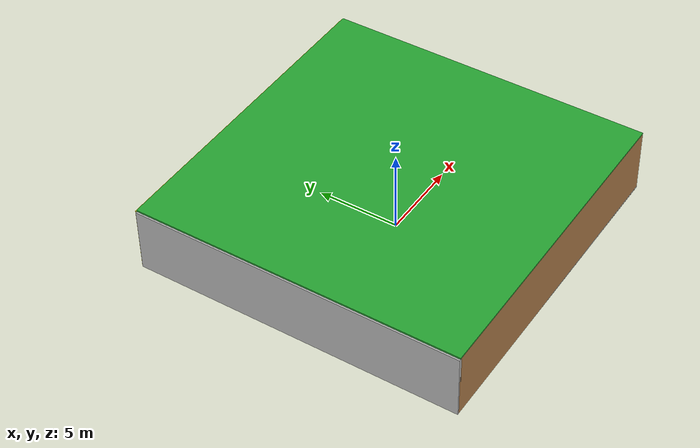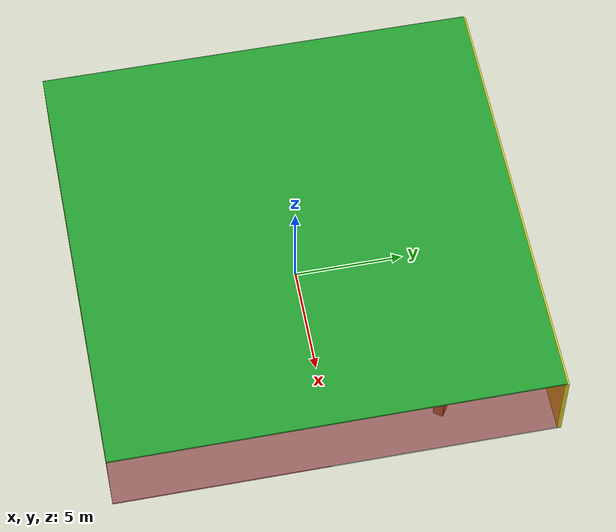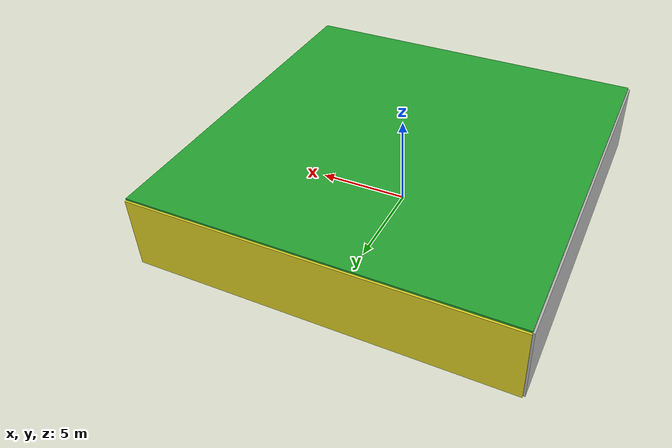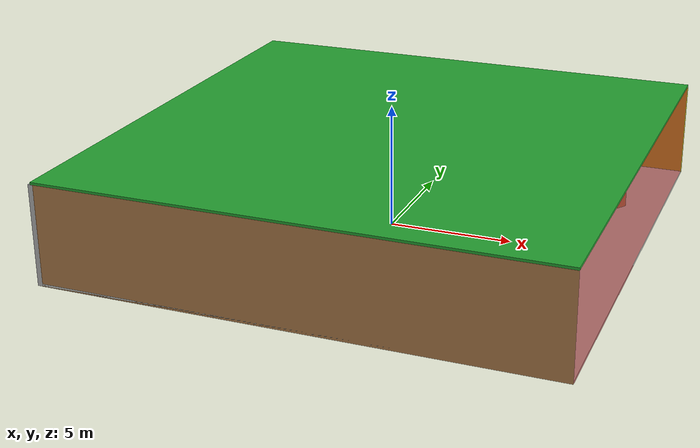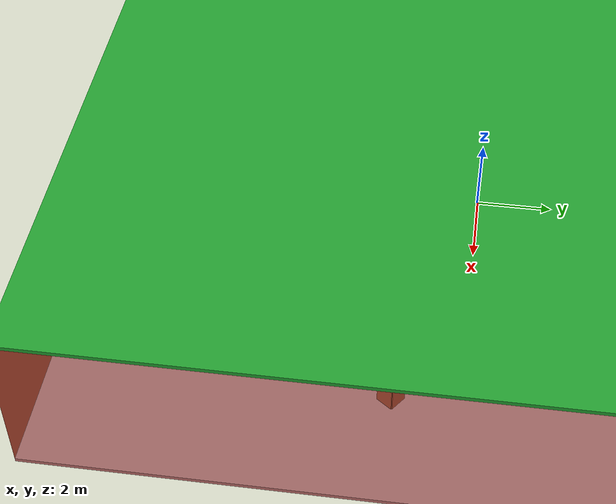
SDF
<sdf version="1.4">
 <world name="default">
  <physics type="ode">
   <max_step_size>0.001</max_step_size>
   <real_time_factor>1</real_time_factor>
   <real_time_update_rate>1000</real_time_update_rate>
   <gravity>0 0 -9.8</gravity>
  </physics>
  <scene><ambient>0.4 0.4 0.4 1</ambient><background>0.7 0.7 0.7 1</background><shadows>1</shadows></scene>
  <model name="Surrounding">
   <static>1</static>
   <link name="Ceiling">
    <collision name="Ceiling_Collision"><geometry><box><size>20 20 0.1</size></box></geometry></collision>
    <visual name="Ceiling_Visual">
     <geometry><box><size>20 20 0.1</size></box></geometry>
     <material>
      <script><uri>file://media/materials/scripts/gazebo.material</uri><name>Gazebo/GreenGlow</name></script>
     </material>
    </visual>
    <pose>0 0 4.05 0 0 0</pose>
   </link>
   <link name="Wall_South">
    <collision name="Wall_South_Collision">
     <geometry><box><size>20 0 4</size></box></geometry>
     <pose>0 0 2 0 -0 0</pose>
    </collision>
    <visual name="Wall_South_Visual">
     <pose>0 0 2 0 -0 0</pose>
     <geometry><box><size>20 0 4</size></box></geometry>
     <material>
      <script><uri>file://media/materials/scripts/gazebo.material</uri><name>Gazebo/WoodFloor</name></script>
     </material>
    </visual>
    <velocity_decay><linear>0</linear><angular>0</angular></velocity_decay>
    <pose>0 -10 0 0 -0 0</pose>
   </link>
   <link name="Wall_East">
    <collision name="Wall_21_Collision">
     <geometry><box><size>20 0 4</size></box></geometry>
     <pose>0 0 2 0 -0 0</pose>
    </collision>
    <visual name="Wall_21_Visual">
     <pose>0 0 2 0 -0 0</pose>
     <geometry><box><size>20 0 4</size></box></geometry>
     <material>
      <script><uri>file://media/materials/scripts/gazebo.material</uri><name>Gazebo/RedTransparent</name></script>
     </material>
    </visual>
    <velocity_decay><linear>0</linear><angular>0</angular></velocity_decay>
    <pose>10 0 0 0 -0 1.5708</pose>
   </link>
   <link name="Wall_North">
    <collision name="Wall_22_Collision">
     <geometry><box><size>20 0.2 4</size></box></geometry>
     <pose>0 0 2 0 -0 0</pose>
    </collision>
    <visual name="Wall_22_Visual">
     <pose>0 0 2 0 -0 0</pose>
     <geometry><box><size>20 0.2 4</size></box></geometry>
     <material>
      <script><uri>file://media/materials/scripts/gazebo.material</uri><name>Gazebo/Yellow</name></script>
     </material>
    </visual>
    <velocity_decay><linear>0</linear><angular>0</angular></velocity_decay>
    <pose>0 10 0 0 -0 0</pose>
   </link>
   <link name="Wall_West">
    <collision name="Wall_23_Collision">
     <geometry><box><size>20 0.2 4</size></box></geometry>
     <pose>0 0 2 0 -0 0</pose>
    </collision>
    <visual name="Wall_23_Visual">
     <pose>0 0 2 0 -0 0</pose>
     <geometry><box><size>20 0.2 4</size></box></geometry>
     <material>
      <script><uri>file://media/materials/scripts/gazebo.material</uri><name>Gazebo/JointAnchor</name></script>
     </material>
    </visual>
    <velocity_decay><linear>0</linear><angular>0</angular></velocity_decay>
    <pose>-10 0 0 0 0 -1.5708</pose>
   </link>
   <link name="Ground_link">
    <collision name="collision">
     <pose>0 0 .05 0 -0 0</pose>
     <geometry><box><size>20 20 0.1</size></box></geometry>
    </collision>
    <visual name="visual">
     <pose>0 0 .05 0 -0 0</pose>
     <geometry><box><size>20 20 0.1</size></box></geometry>
     <material>
      <script><uri>file://media/materials/scripts/gazebo.material</uri><name>Gazebo/CeilingTiled</name></script>
     </material>
    </visual>
   </link>
   <static>1</static>
  </model>
  <spherical_coordinates>
   <surface_model>EARTH_WGS84</surface_model>
   <latitude_deg>0</latitude_deg>
   <longitude_deg>0</longitude_deg>
   <elevation>0</elevation>
   <heading_deg>0</heading_deg>
  </spherical_coordinates>
  <light name="lightball_0" type="diffuse">
   <diffuse>0.8 0.8 0.8 1</diffuse>
   <specular>0.2 0.2 0.2 1</specular>
   <attenuation>
    <range>100</range>
    <constant>0.7</constant>
    <linear>0.01</linear>
    <quadratic>0.001</quadratic>
   </attenuation>
   <direction>-0.5 0.1 -0.9</direction>
   <pose>-7.51606848197 7.95671094451 2.43392771439 0 0 0</pose>
  </light>
  <light name="lightball_1" type="diffuse">
   <diffuse>0.8 0.8 0.8 1</diffuse>
   <specular>0.2 0.2 0.2 1</specular>
   <attenuation>
    <range>100</range>
    <constant>0.7</constant>
    <linear>0.01</linear>
    <quadratic>0.001</quadratic>
   </attenuation>
   <direction>-0.5 0.1 -0.9</direction>
   <pose>1.91692833139 -2.9568377453 3.27175246009 0 0 0</pose>
  </light>
  <light name="lightball_2" type="diffuse">
   <diffuse>0.8 0.8 0.8 1</diffuse>
   <specular>0.2 0.2 0.2 1</specular>
   <attenuation>
    <range>100</range>
    <constant>0.7</constant>
    <linear>0.01</linear>
    <quadratic>0.001</quadratic>
   </attenuation>
   <direction>-0.5 0.1 -0.9</direction>
   <pose>-3.25670688193 0.912060205631 1.31991351336 0 0 0</pose>
  </light>
  <light name="lightball_3" type="diffuse">
   <diffuse>0.8 0.8 0.8 1</diffuse>
   <specular>0.2 0.2 0.2 1</specular>
   <attenuation>
    <range>100</range>
    <constant>0.7</constant>
    <linear>0.01</linear>
    <quadratic>0.001</quadratic>
   </attenuation>
   <direction>-0.5 0.1 -0.9</direction>
   <pose>-8.27542868978 -1.38222193821 0.720511867413 0 0 0</pose>
  </light>
  <light name="lightball_4" type="diffuse">
   <diffuse>0.8 0.8 0.8 1</diffuse>
   <specular>0.2 0.2 0.2 1</specular>
   <attenuation>
    <range>100</range>
    <constant>0.7</constant>
    <linear>0.01</linear>
    <quadratic>0.001</quadratic>
   </attenuation>
   <direction>-0.5 0.1 -0.9</direction>
   <pose>-7.73443918137 9.80564790709 2.32016897667 0 0 0</pose>
  </light>
  <light name="lightball_5" type="diffuse">
   <diffuse>0.8 0.8 0.8 1</diffuse>
   <specular>0.2 0.2 0.2 1</specular>
   <attenuation>
    <range>100</range>
    <constant>0.7</constant>
    <linear>0.01</linear>
    <quadratic>0.001</quadratic>
   </attenuation>
   <direction>-0.5 0.1 -0.9</direction>
   <pose>9.46305382824 3.81809016149 3.42536711349 0 0 0</pose>
  </light>
  <light name="lightball_6" type="diffuse">
   <diffuse>0.8 0.8 0.8 1</diffuse>
   <specular>0.2 0.2 0.2 1</specular>
   <attenuation>
    <range>100</range>
    <constant>0.7</constant>
    <linear>0.01</linear>
    <quadratic>0.001</quadratic>
   </attenuation>
   <direction>-0.5 0.1 -0.9</direction>
   <pose>1.0979379105 -8.49733848429 1.46080528413 0 0 0</pose>
  </light>
  <light name="lightball_7" type="diffuse">
   <diffuse>0.8 0.8 0.8 1</diffuse>
   <specular>0.2 0.2 0.2 1</specular>
   <attenuation>
    <range>100</range>
    <constant>0.7</constant>
    <linear>0.01</linear>
    <quadratic>0.001</quadratic>
   </attenuation>
   <direction>-0.5 0.1 -0.9</direction>
   <pose>-3.77029338921 -2.31154895691 0.585548562937 0 0 0</pose>
  </light>
  <light name="lightball_8" type="diffuse">
   <diffuse>0.8 0.8 0.8 1</diffuse>
   <specular>0.2 0.2 0.2 1</specular>
   <attenuation>
    <range>100</range>
    <constant>0.7</constant>
    <linear>0.01</linear>
    <quadratic>0.001</quadratic>
   </attenuation>
   <direction>-0.5 0.1 -0.9</direction>
   <pose>2.22485262942 3.71357257433 2.96073503338 0 0 0</pose>
  </light>
  <light name="lightball_9" type="diffuse">
   <diffuse>0.8 0.8 0.8 1</diffuse>
   <specular>0.2 0.2 0.2 1</specular>
   <attenuation>
    <range>100</range>
    <constant>0.7</constant>
    <linear>0.01</linear>
    <quadratic>0.001</quadratic>
   </attenuation>
   <direction>-0.5 0.1 -0.9</direction>
   <pose>5.12527687672 -8.11412234861 1.23427408439 0 0 0</pose>
  </light>
  <light name="lightball_10" type="diffuse">
   <diffuse>0.8 0.8 0.8 1</diffuse>
   <specular>0.2 0.2 0.2 1</specular>
   <attenuation>
    <range>100</range>
    <constant>0.7</constant>
    <linear>0.01</linear>
    <quadratic>0.001</quadratic>
   </attenuation>
   <direction>-0.5 0.1 -0.9</direction>
   <pose>-3.93799082516 0.329408823912 1.18936614663 0 0 0</pose>
  </light>
  <light name="lightball_11" type="diffuse">
   <diffuse>0.8 0.8 0.8 1</diffuse>
   <specular>0.2 0.2 0.2 1</specular>
   <attenuation>
    <range>100</range>
    <constant>0.7</constant>
    <linear>0.01</linear>
    <quadratic>0.001</quadratic>
   </attenuation>
   <direction>-0.5 0.1 -0.9</direction>
   <pose>5.43184230192 -3.83015893135 1.67776054694 0 0 0</pose>
  </light>
  <light name="lightball_12" type="diffuse">
   <diffuse>0.8 0.8 0.8 1</diffuse>
   <specular>0.2 0.2 0.2 1</specular>
   <attenuation>
    <range>100</range>
    <constant>0.7</constant>
    <linear>0.01</linear>
    <quadratic>0.001</quadratic>
   </attenuation>
   <direction>-0.5 0.1 -0.9</direction>
   <pose>2.90720776506 0.599816912424 2.83799930157 0 0 0</pose>
  </light>
  <include><uri>model://table</uri><pose>-8.29482405034 4.50930019935 0 0 0 0.0415900509581</pose></include>
  <include>
   <uri>model://textured_shapes</uri>
   <pose>0.958461653825 -4.82502248083 0 0 0 2.83189517244</pose>
  </include>
  <include><uri>model://table</uri><pose>2.17486910792 8.13035475392 0 0 0 1.68163041268</pose></include>
  <include>
   <uri>model://robocup_3Dsim_goal</uri>
   <pose>3.84652705954 -4.28864312381 0 0 0 1.16768883752</pose>
  </include>
  <include><uri>model://cabinet</uri><pose>7.10868621864 -1.65858274099 0 0 0 0.938466734429</pose></include>
  <include><uri>model://cabinet</uri><pose>8.20167850266 4.98448854142 0 0 0 0.950168475938</pose></include>
  <include>
   <uri>model://robocup_3Dsim_goal</uri>
   <pose>6.9945413954 7.22876942618 0 0 0 1.86114701303</pose>
  </include>
 </world>
</sdf>

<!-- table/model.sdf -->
<sdf version="1.5">
  <model name="table">
    <static>true</static>
    <link name="link">
      <collision name="surface">
        <pose>0 0 1.0 0 0 0</pose>
        <geometry>
          <box>
            <size>1.5 0.8 0.03</size>
          </box>
        </geometry>
        <surface>
          <friction>
            <ode>
              <mu>0.6</mu>
              <mu2>0.6</mu2>
            </ode>
          </friction>
        </surface>
      </collision>
      <visual name="visual1">
        <pose>0 0 1.0 0 0 0</pose>
        <geometry>
          <box>
            <size>1.5 0.8 0.03</size>
          </box>
        </geometry>
        <material>
          <script>
            <uri>model://media/materials/scripts/gazebo.material</uri>
            <name>Gazebo/Wood</name>
          </script>
        </material>
      </visual>
      <collision name="front_left_leg">
        <pose>0.68 0.38 0.5 0 0 0</pose>
        <geometry>
          <cylinder>
            <radius>0.02</radius>
            <length>1.0</length>
          </cylinder>
        </geometry>
      </collision>
      <visual name="front_left_leg">
        <pose>0.68 0.38 0.5 0 0 0</pose>
        <geometry>
          <cylinder>
            <radius>0.02</radius>
            <length>1.0</length>
          </cylinder>
        </geometry>
        <material>
          <script>
            <uri>model://media/materials/scripts/gazebo.material</uri>
            <name>Gazebo/Grey</name>
          </script>
        </material>
      </visual>
      <collision name="front_right_leg">
        <pose>0.68 -0.38 0.5 0 0 0</pose>
        <geometry>
          <cylinder>
            <radius>0.02</radius>
            <length>1.0</length>
          </cylinder>
        </geometry>
      </collision>
      <visual name="front_right_leg">
        <pose>0.68 -0.38 0.5 0 0 0</pose>
        <geometry>
          <cylinder>
            <radius>0.02</radius>
            <length>1.0</length>
          </cylinder>
        </geometry>
        <material>
          <script>
            <uri>model://media/materials/scripts/gazebo.material</uri>
            <name>Gazebo/Grey</name>
          </script>
        </material>
      </visual>
      <collision name="back_right_leg">
        <pose>-0.68 -0.38 0.5 0 0 0</pose>
        <geometry>
          <cylinder>
            <radius>0.02</radius>
            <length>1.0</length>
          </cylinder>
        </geometry>
      </collision>
      <visual name="back_right_leg">
        <pose>-0.68 -0.38 0.5 0 0 0</pose>
        <geometry>
          <cylinder>
            <radius>0.02</radius>
            <length>1.0</length>
          </cylinder>
        </geometry>
        <material>
          <script>
            <uri>model://media/materials/scripts/gazebo.material</uri>
            <name>Gazebo/Grey</name>
          </script>
        </material>
      </visual>
      <collision name="back_left_leg">
        <pose>-0.68 0.38 0.5 0 0 0</pose>
        <geometry>
          <cylinder>
            <radius>0.02</radius>
            <length>1.0</length>
          </cylinder>
        </geometry>
      </collision>
      <visual name="back_left_leg">
        <pose>-0.68 0.38 0.5 0 0 0</pose>
        <geometry>
          <cylinder>
            <radius>0.02</radius>
            <length>1.0</length>
          </cylinder>
        </geometry>
        <material>
          <script>
            <uri>model://media/materials/scripts/gazebo.material</uri>
            <name>Gazebo/Grey</name>
          </script>
        </material>
      </visual>
    </link>
  </model>
</sdf>

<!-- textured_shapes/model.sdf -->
<sdf version="1.6">
  <model name="textured_shapes">
    <pose>0 0 0.5 0 0 0</pose>
    <link name="box">
      <pose>0 -1.5 0 0 0 0</pose>
      <collision name="collision">
        <geometry>
          <box>
            <size>1 1 1</size>
          </box>
        </geometry>
      </collision>
      <visual name="visual">
        <geometry>
          <box>
            <size>1 1 1</size>
          </box>
        </geometry>
        <material>
          <script>
            <uri>model://../model_source/models/textured_shapes/materials/scripts</uri>
            <uri>model://../model_source/models/textured_shapes/materials/textures</uri>
            <name>TexturedShape/Squares</name>
          </script>
        </material>
      </visual>
    </link>
    <link name="sphere">
      <collision name="collision">
        <geometry>
          <sphere>
            <radius>0.5</radius>
          </sphere>
        </geometry>
      </collision>
      <visual name="visual">
        <geometry>
          <sphere>
            <radius>0.5</radius>
          </sphere>
        </geometry>
        <material>
          <script>
            <uri>model://../model_source/models/textured_shapes/materials/scripts</uri>
            <uri>model://../model_source/models/textured_shapes/materials/textures</uri>
            <name>TexturedShape/Squares</name>
          </script>
        </material>
      </visual>
    </link>
    <link name="cylinder">
      <pose>0 1.5 0 0 0 0</pose>
      <collision name="collision">
        <geometry>
          <cylinder>
            <radius>0.5</radius>
            <length>1</length>
          </cylinder>
        </geometry>
      </collision>
      <visual name="visual">
        <geometry>
          <cylinder>
            <radius>0.5</radius>
            <length>1</length>
          </cylinder>
        </geometry>
        <material>
          <script>
            <uri>model://../model_source/models/textured_shapes/materials/scripts</uri>
            <uri>model://../model_source/models/textured_shapes/materials/textures</uri>
            <name>TexturedShape/Squares</name>
          </script>
        </material>
      </visual>
    </link>
  </model>
</sdf>

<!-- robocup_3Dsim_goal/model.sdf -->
<sdf version="1.5">
  <model name="robocup_3d_goal">
    <static>true</static>
    <link name="left_post">
      <pose>0 1.05 0.45 0 0 0</pose>
      <collision name="collision">
        <geometry>
          <cylinder>
            <radius>0.05</radius>
            <length>0.9</length>
          </cylinder>
        </geometry>
      </collision>
      <visual name="visual">
        <geometry>
          <cylinder>
            <radius>0.05</radius>
            <length>0.9</length>
          </cylinder>
        </geometry>
        <material>
          <script>
            <uri>file://media/materials/scripts/gazebo.material</uri>
            <name>Gazebo/ZincYellow</name>
          </script>
        </material>
      </visual>
    </link>
    <link name="left_support_horiz_lower">
      <pose>0.30 1.05 0.01 0 0 0</pose>
      <collision name="collision">
        <geometry>
          <box>
            <size>0.50 0.02 0.02</size>
          </box>
        </geometry>
      </collision>
      <visual name="visual">
        <geometry>
          <box>
            <size>0.50 0.02 0.02</size>
          </box>
        </geometry>
        <material>
          <script>
            <uri>file://media/materials/scripts/gazebo.material</uri>
            <name>Gazebo/White</name>
          </script>
        </material>
      </visual>
    </link>
    <link name="left_support_horiz_upper">
      <pose>0.30 1.05 0.79 0 0 0</pose>
      <collision name="collision">
        <geometry>
          <box>
            <size>0.50 0.02 0.02</size>
          </box>
        </geometry>
      </collision>
      <visual name="visual">
        <geometry>
          <box>
            <size>0.50 0.02 0.02</size>
          </box>
        </geometry>
        <material>
          <script>
            <uri>file://media/materials/scripts/gazebo.material</uri>
            <name>Gazebo/White</name>
          </script>
        </material>
      </visual>
    </link>
    <link name="left_support_vertical">
      <pose>0.56 1.05 0.4 0 1.5708 0</pose>
      <collision name="collision">
        <geometry>
          <box>
            <size>0.80 0.02 0.02</size>
          </box>
        </geometry>
      </collision>
      <visual name="visual">
        <geometry>
          <box>
            <size>0.80 0.02 0.02</size>
          </box>
        </geometry>
        <material>
          <script>
            <uri>file://media/materials/scripts/gazebo.material</uri>
            <name>Gazebo/White</name>
          </script>
        </material>
      </visual>
    </link>
    <link name="right_support_horiz_lower">
      <pose>0.30 -1.05 0.01 0 0 0</pose>
      <collision name="collision">
        <geometry>
          <box>
            <size>0.50 0.02 0.02</size>
          </box>
        </geometry>
      </collision>
      <visual name="visual">
        <geometry>
          <box>
            <size>0.50 0.02 0.02</size>
          </box>
        </geometry>
        <material>
          <script>
            <uri>file://media/materials/scripts/gazebo.material</uri>
            <name>Gazebo/White</name>
          </script>
        </material>
      </visual>
    </link>
    <link name="right_support_horiz_upper">
      <pose>0.30 -1.05 0.79 0 0 0</pose>
      <collision name="collision">
        <geometry>
          <box>
            <size>0.50 0.02 0.02</size>
          </box>
        </geometry>
      </collision>
      <visual name="visual">
        <geometry>
          <box>
            <size>0.50 0.02 0.02</size>
          </box>
        </geometry>
        <material>
          <script>
            <uri>file://media/materials/scripts/gazebo.material</uri>
            <name>Gazebo/White</name>
          </script>
        </material>
      </visual>
    </link>
    <link name="right_support_vertical">
      <pose>0.56 -1.05 0.4 0 1.5708 0</pose>
      <collision name="collision">
        <geometry>
          <box>
            <size>0.80 0.02 0.02</size>
          </box>
        </geometry>
      </collision>
      <visual name="visual">
        <geometry>
          <box>
            <size>0.80 0.02 0.02</size>
          </box>
        </geometry>
        <material>
          <script>
            <uri>file://media/materials/scripts/gazebo.material</uri>
            <name>Gazebo/White</name>
          </script>
        </material>
      </visual>
    </link>
    <link name="center_support_horiz_lower">
      <pose>0.56 0 0.01 0 1.5708 0</pose>
      <collision name="collision">
        <geometry>
          <box>
            <size>0.02 2.08 0.02</size>
          </box>
        </geometry>
      </collision>
      <visual name="visual">
        <geometry>
          <box>
            <size>0.02 2.08 0.02</size>
          </box>
        </geometry>
        <material>
          <script>
            <uri>file://media/materials/scripts/gazebo.material</uri>
            <name>Gazebo/White</name>
          </script>
        </material>
      </visual>
    </link>
    <link name="center_support_horiz_upper">
      <pose>0.56 0 0.79 0 1.5708 0</pose>
      <collision name="collision">
        <geometry>
          <box>
            <size>0.02 2.08 0.02</size>
          </box>
        </geometry>
      </collision>
      <visual name="visual">
        <geometry>
          <box>
            <size>0.02 2.08 0.02</size>
          </box>
        </geometry>
        <material>
          <script>
            <uri>file://media/materials/scripts/gazebo.material</uri>
            <name>Gazebo/White</name>
          </script>
        </material>
      </visual>
    </link>
    <link name="right_post">
      <pose>0 -1.05 0.45 0 0 0</pose>
      <collision name="collision">
        <geometry>
          <cylinder>
            <radius>0.05</radius>
            <length>0.9</length>
          </cylinder>
        </geometry>
      </collision>
      <visual name="visual">
        <geometry>
          <cylinder>
            <radius>0.05</radius>
            <length>0.9</length>
          </cylinder>
        </geometry>
        <material>
          <script>
            <uri>file://media/materials/scripts/gazebo.material</uri>
            <name>Gazebo/ZincYellow</name>
          </script>
        </material>
      </visual>
    </link>
    <link name="crossbar">
      <pose>0 0 0.85 1.57 1.57 0</pose>
      <collision name="collision">
        <geometry>
          <cylinder>
            <radius>0.05</radius>
            <length>2.0</length>
          </cylinder>
        </geometry>
      </collision>
      <visual name="visual">
        <geometry>
          <cylinder>
            <radius>0.05</radius>
            <length>2.0</length>
          </cylinder>
        </geometry>
        <material>
          <script>
            <uri>file://media/materials/scripts/gazebo.material</uri>
            <name>Gazebo/ZincYellow</name>
          </script>
        </material>
      </visual>
    </link>
    <link name="center_net">
      <pose>0.56 0 0.40 0 0 0</pose>
      <collision name="collision">
        <geometry>
          <box>
            <size>0.01 2.1 0.80</size>
          </box>
        </geometry>
      </collision>
      <visual name="visual">
        <geometry>
          <box>
            <size>0.01 2.1 0.80</size>
          </box>
        </geometry>
        <material>
          <script>
            <uri>model://../model_source/models/robocup09_spl_field/materials/scripts/</uri>
            <uri>model://../model_source/models/robocup09_spl_field/materials/textures/</uri>
            <name>RoboCup/Net</name>
          </script>
        </material>
      </visual>
    </link>
    <link name="left_net">
      <pose>0.30 1.05 0.40 0 0 0</pose>
      <collision name="collision">
        <geometry>
          <box>
            <size>0.50 0.01 0.76</size>
          </box>
        </geometry>
      </collision>
      <visual name="visual">
        <geometry>
          <box>
            <size>0.50 0.01 0.76</size>
          </box>
        </geometry>
        <material>
          <script>
            <uri>model://../model_source/models/robocup09_spl_field/materials/scripts/</uri>
            <uri>model://../model_source/models/robocup09_spl_field/materials/textures/</uri>
            <name>RoboCup/Net</name>
          </script>
        </material>
      </visual>
    </link>
    <link name="right_net">
      <pose>0.30 -1.05 0.40 0 0 0</pose>
      <collision name="collision">
        <geometry>
          <box>
            <size>0.50 0.01 0.76</size>
          </box>
        </geometry>
      </collision>
      <visual name="visual">
        <geometry>
          <box>
            <size>0.50 0.01 0.76</size>
          </box>
        </geometry>
        <material>
          <script>
            <uri>model://../model_source/models/robocup09_spl_field/materials/scripts/</uri>
            <uri>model://../model_source/models/robocup09_spl_field/materials/textures/</uri>
            <name>RoboCup/Net</name>
          </script>
        </material>
      </visual>
    </link>
  </model>
</sdf>

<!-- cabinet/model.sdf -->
<sdf version="1.5">
  <model name="cabinet">
    <static>true</static>
    <link name="cabinet_bottom_plate">
      <inertial>
        <pose>0 0 -1 0 0 0</pose>
        <inertia>
          <ixx>2.050000</ixx>
          <ixy>0</ixy>
          <ixz>0</ixz>
          <iyy>2.050000</iyy>
          <iyz>0</iyz>
          <izz>2.050000</izz>
        </inertia>
        <mass>25.000000</mass>
      </inertial>
      <collision name="cabinet_bottom_plate_geom">
        <pose>0 0 0.010000 0 0 0</pose>
        <geometry>
          <box>
            <size>0.450000 0.450000 0.020000</size>
          </box>
        </geometry>
      </collision>
      <visual name="cabinet_bottom_plate_geom_visual">
        <pose>0 0 0.010000 0 0 0</pose>
        <geometry>
          <box>
            <size>0.450000 0.450000 0.020000</size>
          </box>
        </geometry>
        <material>
          <script>
            <uri>model://media/materials/scripts/gazebo.material</uri>
            <name>Gazebo/Wood</name>
          </script>
        </material>
      </visual>
      <collision name="cabinet_bottom_plate_geom_cabinet_back_plate">
        <pose>0.235000 0 0.510000 0 0 0</pose>
        <geometry>
          <box>
            <size>0.020000 0.450000 1.020000</size>
          </box>
        </geometry>
      </collision>
      <visual name="cabinet_bottom_plate_geom_cabinet_back_plate_visual">
        <pose>0.235000 0 0.510000 0 0 0</pose>
        <geometry>
          <box>
            <size>0.020000 0.450000 1.020000</size>
          </box>
        </geometry>
        <material>
          <script>
            <uri>model://media/materials/scripts/gazebo.material</uri>
            <name>Gazebo/Wood</name>
          </script>
        </material>
      </visual>
      <collision name="cabinet_bottom_plate_geom_cabinet_left_plate">
        <pose>0 0.235000 0.510000 0 0 0</pose>
        <geometry>
          <box>
            <size>0.450000 0.020000 1.020000</size>
          </box>
        </geometry>
      </collision>
      <visual name="cabinet_bottom_plate_geom_cabinet_left_plate_visual">
        <pose>0 0.235000 0.510000 0 0 0</pose>
        <geometry>
          <box>
            <size>0.450000 0.020000 1.020000</size>
          </box>
        </geometry>
        <material>
          <script>
            <uri>model://media/materials/scripts/gazebo.material</uri>
            <name>Gazebo/Wood</name>
          </script>
        </material>
      </visual>
      <collision name="cabinet_bottom_plate_geom_cabinet_middle_plate">
        <pose>0 0 0.510000 0 0 0</pose>
        <geometry>
          <box>
            <size>0.450000 0.450000 0.020000</size>
          </box>
        </geometry>
      </collision>
      <visual name="cabinet_bottom_plate_geom_cabinet_middle_plate_visual">
        <pose>0 0 0.510000 0 0 0</pose>
        <geometry>
          <box>
            <size>0.450000 0.450000 0.020000</size>
          </box>
        </geometry>
        <material>
          <script>
            <uri>model://media/materials/scripts/gazebo.material</uri>
            <name>Gazebo/Wood</name>
          </script>
        </material>
      </visual>
      <collision name="cabinet_bottom_plate_geom_cabinet_right_plate">
        <pose>0 -0.235000 0.510000 0 0 0</pose>
        <geometry>
          <box>
            <size>0.450000 0.020000 1.020000</size>
          </box>
        </geometry>
      </collision>
      <visual name="cabinet_bottom_plate_geom_cabinet_right_plate_visual">
        <pose>0 -0.235000 0.510000 0 0 0</pose>
        <geometry>
          <box>
            <size>0.450000 0.020000 1.020000</size>
          </box>
        </geometry>
        <material>
          <script>
            <uri>model://media/materials/scripts/gazebo.material</uri>
            <name>Gazebo/Wood</name>
          </script>
        </material>
      </visual>
      <collision name="cabinet_bottom_plate_geom_cabinet_top_plate">
        <pose>0 0 1.010000 0 0 0</pose>
        <geometry>
          <box>
            <size>0.450000 0.450000 0.020000</size>
          </box>
        </geometry>
      </collision>
      <visual name="cabinet_bottom_plate_geom_cabinet_top_plate_visual">
        <pose>0 0 1.010000 0 0 0</pose>
        <geometry>
          <box>
            <size>0.450000 0.450000 0.020000</size>
          </box>
        </geometry>
        <material>
          <script>
            <uri>model://media/materials/scripts/gazebo.material</uri>
            <name>Gazebo/Wood</name>
          </script>
        </material>
      </visual>
    </link>
  </model>
</sdf>
